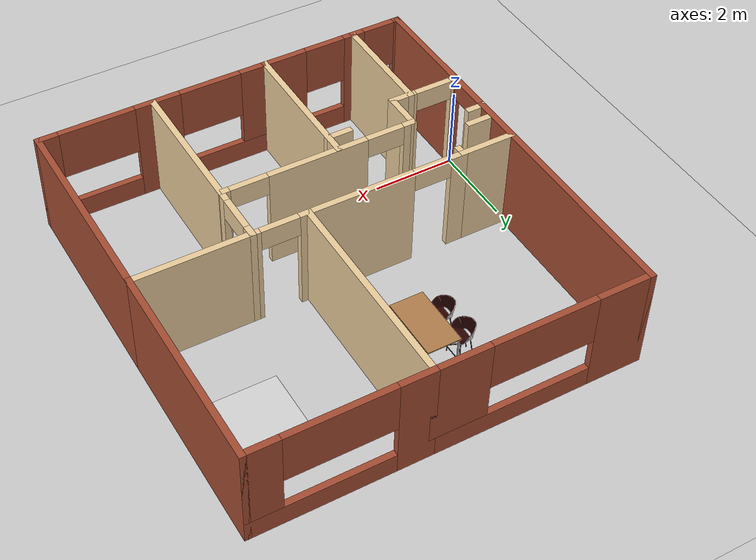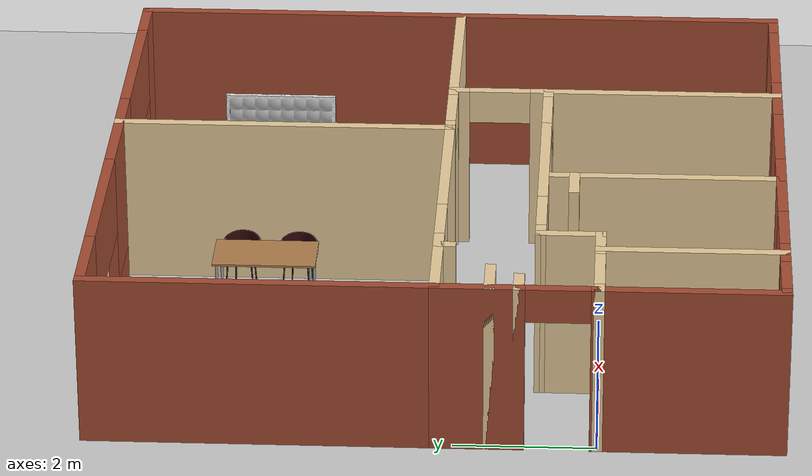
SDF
<sdf version="1.6">
 <world name="default">
  <light name="sun" type="directional">
   <pose>0 0 10 0 -0 0</pose>
   <diffuse>0.8 0.8 0.8 1</diffuse>
   <specular>0.2 0.2 0.2 1</specular>
   <attenuation>
    <range>1000</range>
    <constant>0.9</constant>
    <linear>0.01</linear>
    <quadratic>0.001</quadratic>
   </attenuation>
   <direction>-0.5 0.1 -0.9</direction>
  </light>
  <model name="ground_plane">
   <static>1</static>
   <link name="link">
    <collision name="collision">
     <geometry><plane><normal>0 0 1</normal><size>100 100</size></plane></geometry>
     <surface>
      <contact><collide_bitmask>65535</collide_bitmask></contact>
      <friction><ode><mu>100</mu><mu2>50</mu2></ode></friction>
     </surface>
    </collision>
    <visual name="visual">
     <cast_shadows>0</cast_shadows>
     <geometry><plane><normal>0 0 1</normal><size>100 100</size></plane></geometry>
     <material>
      <script><uri>file://media/materials/scripts/gazebo.material</uri><name>Gazebo/Grey</name></script>
     </material>
    </visual>
   </link>
  </model>
  <gravity>0 0 -9.8</gravity>
  <magnetic_field>6e-06 2.3e-05 -4.2e-05</magnetic_field>
  <atmosphere type="adiabatic"/>
  <physics name="default_physics" default="0" type="ode">
   <max_step_size>0.001</max_step_size>
   <real_time_factor>1</real_time_factor>
   <real_time_update_rate>1000</real_time_update_rate>
  </physics>
  <scene><ambient>0.4 0.4 0.4 1</ambient><background>0.7 0.7 0.7 1</background><shadows>1</shadows></scene>
  <audio><device>default</device></audio>
  <spherical_coordinates>
   <surface_model>EARTH_WGS84</surface_model>
   <latitude_deg>0</latitude_deg>
   <longitude_deg>0</longitude_deg>
   <elevation>0</elevation>
   <heading_deg>0</heading_deg>
  </spherical_coordinates>
  <model name="table">
   <static>1</static>
   <link name="link">
    <collision name="surface">
     <pose>0 0 1 0 -0 0</pose>
     <geometry><box><size>1.5 0.8 0.03</size></box></geometry>
     <surface><friction><ode><mu>0.6</mu><mu2>0.6</mu2></ode></friction></surface>
    </collision>
    <visual name="visual1">
     <pose>0 0 1 0 -0 0</pose>
     <geometry><box><size>1.5 0.8 0.03</size></box></geometry>
     <material>
      <script><uri>file://media/materials/scripts/gazebo.material</uri><name>Gazebo/Wood</name></script>
     </material>
    </visual>
    <collision name="front_left_leg">
     <pose>0.68 0.38 0.5 0 -0 0</pose>
     <geometry><cylinder><radius>0.02</radius><length>1</length></cylinder></geometry>
    </collision>
    <visual name="front_left_leg">
     <pose>0.68 0.38 0.5 0 -0 0</pose>
     <geometry><cylinder><radius>0.02</radius><length>1</length></cylinder></geometry>
     <material>
      <script><uri>file://media/materials/scripts/gazebo.material</uri><name>Gazebo/Grey</name></script>
     </material>
    </visual>
    <collision name="front_right_leg">
     <pose>0.68 -0.38 0.5 0 -0 0</pose>
     <geometry><cylinder><radius>0.02</radius><length>1</length></cylinder></geometry>
    </collision>
    <visual name="front_right_leg">
     <pose>0.68 -0.38 0.5 0 -0 0</pose>
     <geometry><cylinder><radius>0.02</radius><length>1</length></cylinder></geometry>
     <material>
      <script><uri>file://media/materials/scripts/gazebo.material</uri><name>Gazebo/Grey</name></script>
     </material>
    </visual>
    <collision name="back_right_leg">
     <pose>-0.68 -0.38 0.5 0 -0 0</pose>
     <geometry><cylinder><radius>0.02</radius><length>1</length></cylinder></geometry>
    </collision>
    <visual name="back_right_leg">
     <pose>-0.68 -0.38 0.5 0 -0 0</pose>
     <geometry><cylinder><radius>0.02</radius><length>1</length></cylinder></geometry>
     <material>
      <script><uri>file://media/materials/scripts/gazebo.material</uri><name>Gazebo/Grey</name></script>
     </material>
    </visual>
    <collision name="back_left_leg">
     <pose>-0.68 0.38 0.5 0 -0 0</pose>
     <geometry><cylinder><radius>0.02</radius><length>1</length></cylinder></geometry>
    </collision>
    <visual name="back_left_leg">
     <pose>-0.68 0.38 0.5 0 -0 0</pose>
     <geometry><cylinder><radius>0.02</radius><length>1</length></cylinder></geometry>
     <material>
      <script><uri>file://media/materials/scripts/gazebo.material</uri><name>Gazebo/Grey</name></script>
     </material>
    </visual>
   </link>
   <pose>3.75651 4.88007 0 0 -0 1.57</pose>
  </model>
  <model name="chair_1">
   <pose>3.42122 4.54338 0 0 0 -1.57568</pose>
   <static>1</static>
   <link name="body">
    <visual name="visual">
     <geometry><mesh><uri>file:///home/robond/catkin_ws/src/my_robot_v2/meshes/chair.dae</uri></mesh></geometry>
    </visual>
   </link>
  </model>
  <model name="chair_2">
   <pose>4.09913 4.43293 0 0 -0 1.56866</pose>
   <static>1</static>
   <link name="body">
    <visual name="visual">
     <geometry><mesh><uri>file:///home/robond/catkin_ws/src/my_robot_v2/meshes/chair.dae</uri></mesh></geometry>
    </visual>
   </link>
  </model>
  <model name="chair_3">
   <pose>3.38027 5.25761 0 0 0 -1.56972</pose>
   <static>1</static>
   <link name="body">
    <visual name="visual">
     <geometry><mesh><uri>file:///home/robond/catkin_ws/src/my_robot_v2/meshes/chair.dae</uri></mesh></geometry>
    </visual>
   </link>
  </model>
  <model name="chair_4">
   <pose>4.12679 5.2738 0 0 -0 1.56017</pose>
   <static>1</static>
   <link name="body">
    <visual name="visual">
     <geometry><mesh><uri>file:///home/robond/catkin_ws/src/my_robot_v2/meshes/chair.dae</uri></mesh></geometry>
    </visual>
   </link>
  </model>
  <model name="myhome">
   <pose>4.5 2.27499 0 0 -0 0</pose>
   <link name="Wall_0">
    <pose>-4.5 -1.14999 0 0 -0 1.5708</pose>
    <visual name="Wall_0_Visual_0">
     <pose>-1.10813 0 1.25 0 -0 0</pose>
     <geometry><box><size>0.183738 0.15 2.5</size></box></geometry>
     <material>
      <script><uri>file://media/materials/scripts/gazebo.material</uri><name>Gazebo/Bricks</name></script>
      <ambient>1 1 1 1</ambient>
     </material>
     <meta><layer>0</layer></meta>
    </visual>
    <collision name="Wall_0_Collision_0">
     <geometry><box><size>0.183738 0.15 2.5</size></box></geometry>
     <pose>-1.10813 0 1.25 0 -0 0</pose>
    </collision>
    <visual name="Wall_0_Visual_1">
     <pose>0.541869 0 1.25 0 -0 0</pose>
     <geometry><box><size>1.31626 0.15 2.5</size></box></geometry>
     <material>
      <script><uri>file://media/materials/scripts/gazebo.material</uri><name>Gazebo/Bricks</name></script>
      <ambient>1 1 1 1</ambient>
     </material>
     <meta><layer>0</layer></meta>
    </visual>
    <collision name="Wall_0_Collision_1">
     <geometry><box><size>1.31626 0.15 2.5</size></box></geometry>
     <pose>0.541869 0 1.25 0 -0 0</pose>
    </collision>
    <visual name="Wall_0_Visual_2">
     <pose>-0.566262 0 2.25 0 -0 0</pose>
     <geometry><box><size>0.9 0.15 0.5</size></box></geometry>
     <material>
      <script><uri>file://media/materials/scripts/gazebo.material</uri><name>Gazebo/Bricks</name></script>
      <ambient>1 1 1 1</ambient>
     </material>
     <meta><layer>0</layer></meta>
    </visual>
    <collision name="Wall_0_Collision_2">
     <geometry><box><size>0.9 0.15 0.5</size></box></geometry>
     <pose>-0.566262 0 2.25 0 -0 0</pose>
    </collision>
   </link>
   <link name="Wall_11">
    <collision name="Wall_11_Collision">
     <geometry><box><size>0.32 0.15 2.5</size></box></geometry>
     <pose>0 0 1.25 0 -0 0</pose>
    </collision>
    <visual name="Wall_11_Visual">
     <pose>0 0 1.25 0 -0 0</pose>
     <geometry><box><size>0.32 0.15 2.5</size></box></geometry>
     <material>
      <script><uri>file://media/materials/scripts/gazebo.material</uri><name>Gazebo/Grey</name></script>
      <ambient>0.921569 0.807843 0.615686 1</ambient>
     </material>
     <meta><layer>0</layer></meta>
    </visual>
    <pose>-3.25 -0.109994 0 0 0 -1.5708</pose>
   </link>
   <link name="Wall_13">
    <collision name="Wall_13_Collision">
     <geometry><box><size>5 0.15 2.5</size></box></geometry>
     <pose>0 0 1.25 0 -0 0</pose>
    </collision>
    <visual name="Wall_13_Visual">
     <pose>0 0 1.25 0 -0 0</pose>
     <geometry><box><size>5 0.15 2.5</size></box></geometry>
     <material>
      <script><uri>file://media/materials/scripts/gazebo.material</uri><name>Gazebo/Bricks</name></script>
      <ambient>0.996078 0.47451 0.0196078 1</ambient>
     </material>
     <meta><layer>0</layer></meta>
    </visual>
    <pose>-4.5 2.40001 0 0 -0 1.5708</pose>
   </link>
   <link name="Wall_15">
    <pose>-2 4.82501 0 0 -0 0</pose>
    <visual name="Wall_15_Visual_0">
     <pose>-1.89995 0 1.25 0 -0 0</pose>
     <geometry><box><size>1.35011 0.15 2.5</size></box></geometry>
     <material>
      <script><uri>file://media/materials/scripts/gazebo.material</uri><name>Gazebo/Bricks</name></script>
      <ambient>0.996078 0.47451 0.0196078 1</ambient>
     </material>
     <meta><layer>0</layer></meta>
    </visual>
    <collision name="Wall_15_Collision_0">
     <geometry><box><size>1.35011 0.15 2.5</size></box></geometry>
     <pose>-1.89995 0 1.25 0 -0 0</pose>
    </collision>
    <visual name="Wall_15_Visual_1">
     <pose>0.675053 0 0.25 0 -0 0</pose>
     <geometry><box><size>3.79989 0.15 0.5</size></box></geometry>
     <material>
      <script><uri>file://media/materials/scripts/gazebo.material</uri><name>Gazebo/Bricks</name></script>
      <ambient>0.996078 0.47451 0.0196078 1</ambient>
     </material>
     <meta><layer>0</layer></meta>
    </visual>
    <collision name="Wall_15_Collision_1">
     <geometry><box><size>3.79989 0.15 0.5</size></box></geometry>
     <pose>0.675053 0 0.25 0 -0 0</pose>
    </collision>
    <visual name="Wall_15_Visual_2">
     <pose>1.90005 0 1.5 0 -0 0</pose>
     <geometry><box><size>1.34989 0.15 2</size></box></geometry>
     <material>
      <script><uri>file://media/materials/scripts/gazebo.material</uri><name>Gazebo/Bricks</name></script>
      <ambient>0.996078 0.47451 0.0196078 1</ambient>
     </material>
     <meta><layer>0</layer></meta>
    </visual>
    <collision name="Wall_15_Collision_2">
     <geometry><box><size>1.34989 0.15 2</size></box></geometry>
     <pose>1.90005 0 1.5 0 -0 0</pose>
    </collision>
    <visual name="Wall_15_Visual_3">
     <pose>0.000106 0 1.9 0 -0 0</pose>
     <geometry><box><size>2.45 0.15 1.2</size></box></geometry>
     <material>
      <script><uri>file://media/materials/scripts/gazebo.material</uri><name>Gazebo/Bricks</name></script>
      <ambient>0.996078 0.47451 0.0196078 1</ambient>
     </material>
     <meta><layer>0</layer></meta>
    </visual>
    <collision name="Wall_15_Collision_3">
     <geometry><box><size>2.45 0.15 1.2</size></box></geometry>
     <pose>0.000106 0 1.9 0 -0 0</pose>
    </collision>
   </link>
   <link name="Wall_17">
    <collision name="Wall_17_Collision">
     <geometry><box><size>5 0.15 2.5</size></box></geometry>
     <pose>0 0 1.25 0 -0 0</pose>
    </collision>
    <visual name="Wall_17_Visual">
     <pose>0 0 1.25 0 -0 0</pose>
     <geometry><box><size>5 0.15 2.5</size></box></geometry>
     <material>
      <script><uri>file://media/materials/scripts/gazebo.material</uri><name>Gazebo/Grey</name></script>
      <ambient>0.921569 0.807843 0.615686 1</ambient>
     </material>
     <meta><layer>0</layer></meta>
    </visual>
    <pose>0.5 2.40001 0 0 0 -1.5708</pose>
   </link>
   <link name="Wall_19">
    <pose>-1.375 -0.024994 0 0 -0 3.14159</pose>
    <visual name="Wall_19_Visual_0">
     <pose>-0.652573 0 1.25 0 -0 0</pose>
     <geometry><box><size>2.59485 0.15 2.5</size></box></geometry>
     <material>
      <script><uri>file://media/materials/scripts/gazebo.material</uri><name>Gazebo/Grey</name></script>
      <ambient>0.921569 0.807843 0.615686 1</ambient>
     </material>
     <meta><layer>0</layer></meta>
    </visual>
    <collision name="Wall_19_Collision_0">
     <geometry><box><size>2.59485 0.15 2.5</size></box></geometry>
     <pose>-0.652573 0 1.25 0 -0 0</pose>
    </collision>
    <visual name="Wall_19_Visual_1">
     <pose>1.74743 0 1.25 0 -0 0</pose>
     <geometry><box><size>0.405147 0.15 2.5</size></box></geometry>
     <material>
      <script><uri>file://media/materials/scripts/gazebo.material</uri><name>Gazebo/Grey</name></script>
      <ambient>0.921569 0.807843 0.615686 1</ambient>
     </material>
     <meta><layer>0</layer></meta>
    </visual>
    <collision name="Wall_19_Collision_1">
     <geometry><box><size>0.405147 0.15 2.5</size></box></geometry>
     <pose>1.74743 0 1.25 0 -0 0</pose>
    </collision>
    <visual name="Wall_19_Visual_2">
     <pose>1.09485 0 2.25 0 -0 0</pose>
     <geometry><box><size>0.9 0.15 0.5</size></box></geometry>
     <material>
      <script><uri>file://media/materials/scripts/gazebo.material</uri><name>Gazebo/Grey</name></script>
      <ambient>0.921569 0.807843 0.615686 1</ambient>
     </material>
     <meta><layer>0</layer></meta>
    </visual>
    <collision name="Wall_19_Collision_2">
     <geometry><box><size>0.9 0.15 0.5</size></box></geometry>
     <pose>1.09485 0 2.25 0 -0 0</pose>
    </collision>
   </link>
   <link name="Wall_2">
    <collision name="Wall_2_Collision">
     <geometry><box><size>0.49 0.15 2.5</size></box></geometry>
     <pose>0 0 1.25 0 -0 0</pose>
    </collision>
    <visual name="Wall_2_Visual">
     <pose>0 0 1.25 0 -0 0</pose>
     <geometry><box><size>0.49 0.15 2.5</size></box></geometry>
     <material>
      <script><uri>file://media/materials/scripts/gazebo.material</uri><name>Gazebo/Grey</name></script>
      <ambient>0.921569 0.807843 0.615686 1</ambient>
     </material>
     <meta><layer>0</layer></meta>
    </visual>
    <pose>-4.33 -1.17499 0 0 -0 0</pose>
   </link>
   <link name="Wall_21">
    <pose>-3.675 -2.27499 0 0 -0 0</pose>
    <visual name="Wall_21_Visual_0">
     <pose>-0.785796 0 1.25 0 -0 0</pose>
     <geometry><box><size>0.228408 0.15 2.5</size></box></geometry>
     <material>
      <script><uri>file://media/materials/scripts/gazebo.material</uri><name>Gazebo/Grey</name></script>
      <ambient>0.921569 0.807843 0.615686 1</ambient>
     </material>
     <meta><layer>0</layer></meta>
    </visual>
    <collision name="Wall_21_Collision_0">
     <geometry><box><size>0.228408 0.15 2.5</size></box></geometry>
     <pose>-0.785796 0 1.25 0 -0 0</pose>
    </collision>
    <visual name="Wall_21_Visual_1">
     <pose>0.564204 0 1.25 0 -0 0</pose>
     <geometry><box><size>0.671592 0.15 2.5</size></box></geometry>
     <material>
      <script><uri>file://media/materials/scripts/gazebo.material</uri><name>Gazebo/Grey</name></script>
      <ambient>0.921569 0.807843 0.615686 1</ambient>
     </material>
     <meta><layer>0</layer></meta>
    </visual>
    <collision name="Wall_21_Collision_1">
     <geometry><box><size>0.671592 0.15 2.5</size></box></geometry>
     <pose>0.564204 0 1.25 0 -0 0</pose>
    </collision>
    <visual name="Wall_21_Visual_2">
     <pose>-0.221592 0 2.25 0 -0 0</pose>
     <geometry><box><size>0.9 0.15 0.5</size></box></geometry>
     <material>
      <script><uri>file://media/materials/scripts/gazebo.material</uri><name>Gazebo/Grey</name></script>
      <ambient>0.921569 0.807843 0.615686 1</ambient>
     </material>
     <meta><layer>0</layer></meta>
    </visual>
    <collision name="Wall_21_Collision_2">
     <geometry><box><size>0.9 0.15 0.5</size></box></geometry>
     <pose>-0.221592 0 2.25 0 -0 0</pose>
    </collision>
   </link>
   <link name="Wall_23">
    <collision name="Wall_23_Collision">
     <geometry><box><size>0.99 0.15 2.5</size></box></geometry>
     <pose>0 0 1.25 0 -0 0</pose>
    </collision>
    <visual name="Wall_23_Visual">
     <pose>0 0 1.25 0 -0 0</pose>
     <geometry><box><size>0.99 0.15 2.5</size></box></geometry>
     <material>
      <script><uri>file://media/materials/scripts/gazebo.material</uri><name>Gazebo/Grey</name></script>
      <ambient>0.921569 0.807843 0.615686 1</ambient>
     </material>
     <meta><layer>0</layer></meta>
    </visual>
    <pose>-2.85 -1.85499 0 0 -0 1.5708</pose>
   </link>
   <link name="Wall_31">
    <pose>-0.525 -1.43549 0 0 0 -0.000215</pose>
    <visual name="Wall_31_Visual_0">
     <pose>-2.23745 0 1.25 0 -0 0</pose>
     <geometry><box><size>0.3251 0.15 2.5</size></box></geometry>
     <material>
      <script><uri>file://media/materials/scripts/gazebo.material</uri><name>Gazebo/Grey</name></script>
      <ambient>0.921569 0.807843 0.615686 1</ambient>
     </material>
     <meta><layer>0</layer></meta>
    </visual>
    <collision name="Wall_31_Collision_0">
     <geometry><box><size>0.3251 0.15 2.5</size></box></geometry>
     <pose>-2.23745 0 1.25 0 -0 0</pose>
    </collision>
    <visual name="Wall_31_Visual_1">
     <pose>0.030061 0 1.25 0 -0 0</pose>
     <geometry><box><size>2.40992 0.15 2.5</size></box></geometry>
     <material>
      <script><uri>file://media/materials/scripts/gazebo.material</uri><name>Gazebo/Grey</name></script>
      <ambient>0.921569 0.807843 0.615686 1</ambient>
     </material>
     <meta><layer>0</layer></meta>
    </visual>
    <collision name="Wall_31_Collision_1">
     <geometry><box><size>2.40992 0.15 2.5</size></box></geometry>
     <pose>0.030061 0 1.25 0 -0 0</pose>
    </collision>
    <visual name="Wall_31_Visual_2">
     <pose>2.26751 0 1.25 0 -0 0</pose>
     <geometry><box><size>0.264977 0.15 2.5</size></box></geometry>
     <material>
      <script><uri>file://media/materials/scripts/gazebo.material</uri><name>Gazebo/Grey</name></script>
      <ambient>0.921569 0.807843 0.615686 1</ambient>
     </material>
     <meta><layer>0</layer></meta>
    </visual>
    <collision name="Wall_31_Collision_2">
     <geometry><box><size>0.264977 0.15 2.5</size></box></geometry>
     <pose>2.26751 0 1.25 0 -0 0</pose>
    </collision>
    <visual name="Wall_31_Visual_3">
     <pose>-1.6249 0 2.25 0 -0 0</pose>
     <geometry><box><size>0.9 0.15 0.5</size></box></geometry>
     <material>
      <script><uri>file://media/materials/scripts/gazebo.material</uri><name>Gazebo/Grey</name></script>
      <ambient>0.921569 0.807843 0.615686 1</ambient>
     </material>
     <meta><layer>0</layer></meta>
    </visual>
    <collision name="Wall_31_Collision_3">
     <geometry><box><size>0.9 0.15 0.5</size></box></geometry>
     <pose>-1.6249 0 2.25 0 -0 0</pose>
    </collision>
    <visual name="Wall_31_Visual_4">
     <pose>1.68502 0 2.25 0 -0 0</pose>
     <geometry><box><size>0.9 0.15 0.5</size></box></geometry>
     <material>
      <script><uri>file://media/materials/scripts/gazebo.material</uri><name>Gazebo/Grey</name></script>
      <ambient>0.921569 0.807843 0.615686 1</ambient>
     </material>
     <meta><layer>0</layer></meta>
    </visual>
    <collision name="Wall_31_Collision_4">
     <geometry><box><size>0.9 0.15 0.5</size></box></geometry>
     <pose>1.68502 0 2.25 0 -0 0</pose>
    </collision>
   </link>
   <link name="Wall_33">
    <pose>1.8 -0.730494 0 0 -0 1.5708</pose>
    <visual name="Wall_33_Visual_0">
     <pose>-0.606742 0 1.25 0 -0 0</pose>
     <geometry><box><size>0.348515 0.15 2.5</size></box></geometry>
     <material>
      <script><uri>file://media/materials/scripts/gazebo.material</uri><name>Gazebo/Grey</name></script>
      <ambient>0.921569 0.807843 0.615686 1</ambient>
     </material>
     <meta><layer>0</layer></meta>
    </visual>
    <collision name="Wall_33_Collision_0">
     <geometry><box><size>0.348515 0.15 2.5</size></box></geometry>
     <pose>-0.606742 0 1.25 0 -0 0</pose>
    </collision>
    <visual name="Wall_33_Visual_1">
     <pose>0.624258 0 1.25 0 -0 0</pose>
     <geometry><box><size>0.313484 0.15 2.5</size></box></geometry>
     <material>
      <script><uri>file://media/materials/scripts/gazebo.material</uri><name>Gazebo/Grey</name></script>
      <ambient>0.921569 0.807843 0.615686 1</ambient>
     </material>
     <meta><layer>0</layer></meta>
    </visual>
    <collision name="Wall_33_Collision_1">
     <geometry><box><size>0.313484 0.15 2.5</size></box></geometry>
     <pose>0.624258 0 1.25 0 -0 0</pose>
    </collision>
    <visual name="Wall_33_Visual_2">
     <pose>0.017516 0 2.25 0 -0 0</pose>
     <geometry><box><size>0.9 0.15 0.5</size></box></geometry>
     <material>
      <script><uri>file://media/materials/scripts/gazebo.material</uri><name>Gazebo/Grey</name></script>
      <ambient>0.921569 0.807843 0.615686 1</ambient>
     </material>
     <meta><layer>0</layer></meta>
    </visual>
    <collision name="Wall_33_Collision_2">
     <geometry><box><size>0.9 0.15 0.5</size></box></geometry>
     <pose>0.017516 0 2.25 0 -0 0</pose>
    </collision>
   </link>
   <link name="Wall_35">
    <pose>1.15 -0.024994 0 0 -0 0</pose>
    <visual name="Wall_35_Visual_0">
     <pose>-0.575785 0 1.25 0 -0 0</pose>
     <geometry><box><size>0.298431 0.15 2.5</size></box></geometry>
     <material>
      <script><uri>file://media/materials/scripts/gazebo.material</uri><name>Gazebo/Grey</name></script>
      <ambient>0.921569 0.807843 0.615686 1</ambient>
     </material>
     <meta><layer>0</layer></meta>
    </visual>
    <collision name="Wall_35_Collision_0">
     <geometry><box><size>0.298431 0.15 2.5</size></box></geometry>
     <pose>-0.575785 0 1.25 0 -0 0</pose>
    </collision>
    <visual name="Wall_35_Visual_1">
     <pose>0.599215 0 1.25 0 -0 0</pose>
     <geometry><box><size>0.251569 0.15 2.5</size></box></geometry>
     <material>
      <script><uri>file://media/materials/scripts/gazebo.material</uri><name>Gazebo/Grey</name></script>
      <ambient>0.921569 0.807843 0.615686 1</ambient>
     </material>
     <meta><layer>0</layer></meta>
    </visual>
    <collision name="Wall_35_Collision_1">
     <geometry><box><size>0.251569 0.15 2.5</size></box></geometry>
     <pose>0.599215 0 1.25 0 -0 0</pose>
    </collision>
    <visual name="Wall_35_Visual_2">
     <pose>0.023431 0 2.25 0 -0 0</pose>
     <geometry><box><size>0.9 0.15 0.5</size></box></geometry>
     <material>
      <script><uri>file://media/materials/scripts/gazebo.material</uri><name>Gazebo/Grey</name></script>
      <ambient>0.921569 0.807843 0.615686 1</ambient>
     </material>
     <meta><layer>0</layer></meta>
    </visual>
    <collision name="Wall_35_Collision_2">
     <geometry><box><size>0.9 0.15 0.5</size></box></geometry>
     <pose>0.023431 0 2.25 0 -0 0</pose>
    </collision>
   </link>
   <link name="Wall_37">
    <collision name="Wall_37_Collision">
     <geometry><box><size>2.7 0.15 2.5</size></box></geometry>
     <pose>0 0 1.25 0 -0 0</pose>
    </collision>
    <visual name="Wall_37_Visual">
     <pose>0 0 1.25 0 -0 0</pose>
     <geometry><box><size>2.7 0.15 2.5</size></box></geometry>
     <material>
      <script><uri>file://media/materials/scripts/gazebo.material</uri><name>Gazebo/Bricks</name></script>
      <ambient>1 1 1 1</ambient>
     </material>
     <meta><layer>0</layer></meta>
    </visual>
    <pose>-4.5 -3.54999 0 0 0 -1.5708</pose>
   </link>
   <link name="Wall_39">
    <pose>-3.9 -4.82499 0 0 -0 0</pose>
    <visual name="Wall_39_Visual_0">
     <pose>-0.571745 0 1.25 0 -0 0</pose>
     <geometry><box><size>0.206511 0.15 2.5</size></box></geometry>
     <material>
      <script><uri>file://media/materials/scripts/gazebo.material</uri><name>Gazebo/Bricks</name></script>
      <ambient>1 1 1 1</ambient>
     </material>
     <meta><layer>0</layer></meta>
    </visual>
    <collision name="Wall_39_Collision_0">
     <geometry><box><size>0.206511 0.15 2.5</size></box></geometry>
     <pose>-0.571745 0 1.25 0 -0 0</pose>
    </collision>
    <visual name="Wall_39_Visual_1">
     <pose>0.103255 0 0.25 0 -0 0</pose>
     <geometry><box><size>1.14349 0.15 0.5</size></box></geometry>
     <material>
      <script><uri>file://media/materials/scripts/gazebo.material</uri><name>Gazebo/Bricks</name></script>
      <ambient>1 1 1 1</ambient>
     </material>
     <meta><layer>0</layer></meta>
    </visual>
    <collision name="Wall_39_Collision_1">
     <geometry><box><size>1.14349 0.15 0.5</size></box></geometry>
     <pose>0.103255 0 0.25 0 -0 0</pose>
    </collision>
    <visual name="Wall_39_Visual_2">
     <pose>0.503255 0 1.5 0 -0 0</pose>
     <geometry><box><size>0.343489 0.15 2</size></box></geometry>
     <material>
      <script><uri>file://media/materials/scripts/gazebo.material</uri><name>Gazebo/Bricks</name></script>
      <ambient>1 1 1 1</ambient>
     </material>
     <meta><layer>0</layer></meta>
    </visual>
    <collision name="Wall_39_Collision_2">
     <geometry><box><size>0.343489 0.15 2</size></box></geometry>
     <pose>0.503255 0 1.5 0 -0 0</pose>
    </collision>
    <visual name="Wall_39_Visual_3">
     <pose>-0.068489 0 1.9 0 -0 0</pose>
     <geometry><box><size>0.8 0.15 1.2</size></box></geometry>
     <material>
      <script><uri>file://media/materials/scripts/gazebo.material</uri><name>Gazebo/Bricks</name></script>
      <ambient>1 1 1 1</ambient>
     </material>
     <meta><layer>0</layer></meta>
    </visual>
    <collision name="Wall_39_Collision_3">
     <geometry><box><size>0.8 0.15 1.2</size></box></geometry>
     <pose>-0.068489 0 1.9 0 -0 0</pose>
    </collision>
   </link>
   <link name="Wall_41">
    <collision name="Wall_41_Collision">
     <geometry><box><size>2.7 0.15 2.5</size></box></geometry>
     <pose>0 0 1.25 0 -0 0</pose>
    </collision>
    <visual name="Wall_41_Visual">
     <pose>0 0 1.25 0 -0 0</pose>
     <geometry><box><size>2.7 0.15 2.5</size></box></geometry>
     <material>
      <script><uri>file://media/materials/scripts/gazebo.material</uri><name>Gazebo/Grey</name></script>
      <ambient>0.921569 0.807843 0.615686 1</ambient>
     </material>
     <meta><layer>0</layer></meta>
    </visual>
    <pose>-3.3 -3.54999 0 0 -0 1.5708</pose>
   </link>
   <link name="Wall_43">
    <pose>-2.15 -4.82499 0 0 -0 0</pose>
    <visual name="Wall_43_Visual_0">
     <pose>-1.05276 0 1.25 0 -0 0</pose>
     <geometry><box><size>0.344481 0.15 2.5</size></box></geometry>
     <material>
      <script><uri>file://media/materials/scripts/gazebo.material</uri><name>Gazebo/Bricks</name></script>
      <ambient>1 1 1 1</ambient>
     </material>
     <meta><layer>0</layer></meta>
    </visual>
    <collision name="Wall_43_Collision_0">
     <geometry><box><size>0.344481 0.15 2.5</size></box></geometry>
     <pose>-1.05276 0 1.25 0 -0 0</pose>
    </collision>
    <visual name="Wall_43_Visual_1">
     <pose>0.17224 0 0.25 0 -0 0</pose>
     <geometry><box><size>2.10552 0.15 0.5</size></box></geometry>
     <material>
      <script><uri>file://media/materials/scripts/gazebo.material</uri><name>Gazebo/Bricks</name></script>
      <ambient>1 1 1 1</ambient>
     </material>
     <meta><layer>0</layer></meta>
    </visual>
    <collision name="Wall_43_Collision_1">
     <geometry><box><size>2.10552 0.15 0.5</size></box></geometry>
     <pose>0.17224 0 0.25 0 -0 0</pose>
    </collision>
    <visual name="Wall_43_Visual_2">
     <pose>0.67224 0 1.5 0 -0 0</pose>
     <geometry><box><size>1.10552 0.15 2</size></box></geometry>
     <material>
      <script><uri>file://media/materials/scripts/gazebo.material</uri><name>Gazebo/Bricks</name></script>
      <ambient>1 1 1 1</ambient>
     </material>
     <meta><layer>0</layer></meta>
    </visual>
    <collision name="Wall_43_Collision_2">
     <geometry><box><size>1.10552 0.15 2</size></box></geometry>
     <pose>0.67224 0 1.5 0 -0 0</pose>
    </collision>
    <visual name="Wall_43_Visual_3">
     <pose>-0.380519 0 1.9 0 -0 0</pose>
     <geometry><box><size>1 0.15 1.2</size></box></geometry>
     <material>
      <script><uri>file://media/materials/scripts/gazebo.material</uri><name>Gazebo/Bricks</name></script>
      <ambient>1 1 1 1</ambient>
     </material>
     <meta><layer>0</layer></meta>
    </visual>
    <collision name="Wall_43_Collision_3">
     <geometry><box><size>1 0.15 1.2</size></box></geometry>
     <pose>-0.380519 0 1.9 0 -0 0</pose>
    </collision>
   </link>
   <link name="Wall_45">
    <collision name="Wall_45_Collision">
     <geometry><box><size>3.527 0.15 2.5</size></box></geometry>
     <pose>0 0 1.25 0 -0 0</pose>
    </collision>
    <visual name="Wall_45_Visual">
     <pose>0 0 1.25 0 -0 0</pose>
     <geometry><box><size>3.527 0.15 2.5</size></box></geometry>
     <material>
      <script><uri>file://media/materials/scripts/gazebo.material</uri><name>Gazebo/Grey</name></script>
      <ambient>0.921569 0.807843 0.615686 1</ambient>
     </material>
     <meta><layer>0</layer></meta>
    </visual>
    <pose>-1 -3.13649 0 0 -0 1.5708</pose>
   </link>
   <link name="Wall_47">
    <collision name="Wall_47_Collision">
     <geometry><box><size>3.53902 0.15 2.5</size></box></geometry>
     <pose>0 0 1.25 0 -0 0</pose>
    </collision>
    <visual name="Wall_47_Visual">
     <pose>0 0 1.25 0 -0 0</pose>
     <geometry><box><size>3.53902 0.15 2.5</size></box></geometry>
     <material>
      <script><uri>file://media/materials/scripts/gazebo.material</uri><name>Gazebo/Grey</name></script>
      <ambient>0.921569 0.807843 0.615686 1</ambient>
     </material>
     <meta><layer>0</layer></meta>
    </visual>
    <pose>1.8 -3.13049 0 0 0 -1.5708</pose>
   </link>
   <link name="Wall_48">
    <pose>0.4 -4.82499 0 0 -0 3.14159</pose>
    <visual name="Wall_48_Visual_0">
     <pose>-1.11423 0 1.25 0 -0 0</pose>
     <geometry><box><size>0.721544 0.15 2.5</size></box></geometry>
     <material>
      <script><uri>file://media/materials/scripts/gazebo.material</uri><name>Gazebo/Bricks</name></script>
      <ambient>1 1 1 1</ambient>
     </material>
     <meta><layer>0</layer></meta>
    </visual>
    <collision name="Wall_48_Collision_0">
     <geometry><box><size>0.721544 0.15 2.5</size></box></geometry>
     <pose>-1.11423 0 1.25 0 -0 0</pose>
    </collision>
    <visual name="Wall_48_Visual_1">
     <pose>0.360772 0 0.25 0 -0 0</pose>
     <geometry><box><size>2.22846 0.15 0.5</size></box></geometry>
     <material>
      <script><uri>file://media/materials/scripts/gazebo.material</uri><name>Gazebo/Bricks</name></script>
      <ambient>1 1 1 1</ambient>
     </material>
     <meta><layer>0</layer></meta>
    </visual>
    <collision name="Wall_48_Collision_1">
     <geometry><box><size>2.22846 0.15 0.5</size></box></geometry>
     <pose>0.360772 0 0.25 0 -0 0</pose>
    </collision>
    <visual name="Wall_48_Visual_2">
     <pose>1.11077 0 1.5 0 -0 0</pose>
     <geometry><box><size>0.728456 0.15 2</size></box></geometry>
     <material>
      <script><uri>file://media/materials/scripts/gazebo.material</uri><name>Gazebo/Bricks</name></script>
      <ambient>1 1 1 1</ambient>
     </material>
     <meta><layer>0</layer></meta>
    </visual>
    <collision name="Wall_48_Collision_2">
     <geometry><box><size>0.728456 0.15 2</size></box></geometry>
     <pose>1.11077 0 1.5 0 -0 0</pose>
    </collision>
    <visual name="Wall_48_Visual_3">
     <pose>-0.003456 0 1.9 0 -0 0</pose>
     <geometry><box><size>1.5 0.15 1.2</size></box></geometry>
     <material>
      <script><uri>file://media/materials/scripts/gazebo.material</uri><name>Gazebo/Bricks</name></script>
      <ambient>1 1 1 1</ambient>
     </material>
     <meta><layer>0</layer></meta>
    </visual>
    <collision name="Wall_48_Collision_3">
     <geometry><box><size>1.5 0.15 1.2</size></box></geometry>
     <pose>-0.003456 0 1.9 0 -0 0</pose>
    </collision>
   </link>
   <link name="Wall_52">
    <pose>3.15 -4.82499 0 0 -0 0</pose>
    <visual name="Wall_52_Visual_0">
     <pose>-1.16201 0 1.25 0 -0 0</pose>
     <geometry><box><size>0.525985 0.15 2.5</size></box></geometry>
     <material>
      <script><uri>file://media/materials/scripts/gazebo.material</uri><name>Gazebo/Bricks</name></script>
      <ambient>1 1 1 1</ambient>
     </material>
     <meta><layer>0</layer></meta>
    </visual>
    <collision name="Wall_52_Collision_0">
     <geometry><box><size>0.525985 0.15 2.5</size></box></geometry>
     <pose>-1.16201 0 1.25 0 -0 0</pose>
    </collision>
    <visual name="Wall_52_Visual_1">
     <pose>0.262992 0 0.25 0 -0 0</pose>
     <geometry><box><size>2.32402 0.15 0.5</size></box></geometry>
     <material>
      <script><uri>file://media/materials/scripts/gazebo.material</uri><name>Gazebo/Bricks</name></script>
      <ambient>1 1 1 1</ambient>
     </material>
     <meta><layer>0</layer></meta>
    </visual>
    <collision name="Wall_52_Collision_1">
     <geometry><box><size>2.32402 0.15 0.5</size></box></geometry>
     <pose>0.262992 0 0.25 0 -0 0</pose>
    </collision>
    <visual name="Wall_52_Visual_2">
     <pose>1.16299 0 1.5 0 -0 0</pose>
     <geometry><box><size>0.524015 0.15 2</size></box></geometry>
     <material>
      <script><uri>file://media/materials/scripts/gazebo.material</uri><name>Gazebo/Bricks</name></script>
      <ambient>1 1 1 1</ambient>
     </material>
     <meta><layer>0</layer></meta>
    </visual>
    <collision name="Wall_52_Collision_2">
     <geometry><box><size>0.524015 0.15 2</size></box></geometry>
     <pose>1.16299 0 1.5 0 -0 0</pose>
    </collision>
    <visual name="Wall_52_Visual_3">
     <pose>0.000985 0 1.9 0 -0 0</pose>
     <geometry><box><size>1.8 0.15 1.2</size></box></geometry>
     <material>
      <script><uri>file://media/materials/scripts/gazebo.material</uri><name>Gazebo/Bricks</name></script>
      <ambient>1 1 1 1</ambient>
     </material>
     <meta><layer>0</layer></meta>
    </visual>
    <collision name="Wall_52_Collision_3">
     <geometry><box><size>1.8 0.15 1.2</size></box></geometry>
     <pose>0.000985 0 1.9 0 -0 0</pose>
    </collision>
   </link>
   <link name="Wall_55">
    <collision name="Wall_55_Collision">
     <geometry><box><size>2.85 0.15 2.5</size></box></geometry>
     <pose>0 0 1.25 0 -0 0</pose>
    </collision>
    <visual name="Wall_55_Visual">
     <pose>0 0 1.25 0 -0 0</pose>
     <geometry><box><size>2.85 0.15 2.5</size></box></geometry>
     <material>
      <script><uri>file://media/materials/scripts/gazebo.material</uri><name>Gazebo/Grey</name></script>
      <ambient>0.921569 0.807843 0.615686 1</ambient>
     </material>
     <meta><layer>0</layer></meta>
    </visual>
    <pose>3.15 -0.024994 0 0 -0 0</pose>
   </link>
   <link name="Wall_57">
    <pose>2.5 4.82501 0 0 -0 0</pose>
    <visual name="Wall_57_Visual_0">
     <pose>-1.65081 0 1.25 0 -0 0</pose>
     <geometry><box><size>0.848373 0.15 2.5</size></box></geometry>
     <material>
      <script><uri>file://media/materials/scripts/gazebo.material</uri><name>Gazebo/Bricks</name></script>
      <ambient>1 1 1 1</ambient>
     </material>
     <meta><layer>0</layer></meta>
    </visual>
    <collision name="Wall_57_Collision_0">
     <geometry><box><size>0.848373 0.15 2.5</size></box></geometry>
     <pose>-1.65081 0 1.25 0 -0 0</pose>
    </collision>
    <visual name="Wall_57_Visual_1">
     <pose>0.424187 0 0.25 0 -0 0</pose>
     <geometry><box><size>3.30163 0.15 0.5</size></box></geometry>
     <material>
      <script><uri>file://media/materials/scripts/gazebo.material</uri><name>Gazebo/Bricks</name></script>
      <ambient>1 1 1 1</ambient>
     </material>
     <meta><layer>0</layer></meta>
    </visual>
    <collision name="Wall_57_Collision_1">
     <geometry><box><size>3.30163 0.15 0.5</size></box></geometry>
     <pose>0.424187 0 0.25 0 -0 0</pose>
    </collision>
    <visual name="Wall_57_Visual_2">
     <pose>1.64919 0 1.5 0 -0 0</pose>
     <geometry><box><size>0.851627 0.15 2</size></box></geometry>
     <material>
      <script><uri>file://media/materials/scripts/gazebo.material</uri><name>Gazebo/Bricks</name></script>
      <ambient>1 1 1 1</ambient>
     </material>
     <meta><layer>0</layer></meta>
    </visual>
    <collision name="Wall_57_Collision_2">
     <geometry><box><size>0.851627 0.15 2</size></box></geometry>
     <pose>1.64919 0 1.5 0 -0 0</pose>
    </collision>
    <visual name="Wall_57_Visual_3">
     <pose>-0.001627 0 1.9 0 -0 0</pose>
     <geometry><box><size>2.45 0.15 1.2</size></box></geometry>
     <material>
      <script><uri>file://media/materials/scripts/gazebo.material</uri><name>Gazebo/Bricks</name></script>
      <ambient>1 1 1 1</ambient>
     </material>
     <meta><layer>0</layer></meta>
    </visual>
    <collision name="Wall_57_Collision_3">
     <geometry><box><size>2.45 0.15 1.2</size></box></geometry>
     <pose>-0.001627 0 1.9 0 -0 0</pose>
    </collision>
   </link>
   <link name="Wall_58">
    <collision name="Wall_58_Collision">
     <geometry><box><size>5 0.15 2.5</size></box></geometry>
     <pose>0 0 1.25 0 -0 0</pose>
    </collision>
    <visual name="Wall_58_Visual">
     <pose>0 0 1.25 0 -0 0</pose>
     <geometry><box><size>5 0.15 2.5</size></box></geometry>
     <material>
      <script><uri>file://media/materials/scripts/gazebo.material</uri><name>Gazebo/Bricks</name></script>
      <ambient>1 1 1 1</ambient>
     </material>
     <meta><layer>0</layer></meta>
    </visual>
    <pose>4.5 2.40001 0 0 0 -1.5708</pose>
   </link>
   <link name="Wall_6">
    <collision name="Wall_6_Collision">
     <geometry><box><size>0.75 0.15 2.5</size></box></geometry>
     <pose>0 0 1.25 0 -0 0</pose>
    </collision>
    <visual name="Wall_6_Visual">
     <pose>0 0 1.25 0 -0 0</pose>
     <geometry><box><size>0.75 0.15 2.5</size></box></geometry>
     <material>
      <script><uri>file://media/materials/scripts/gazebo.material</uri><name>Gazebo/Grey</name></script>
      <ambient>0.921569 0.807843 0.615686 1</ambient>
     </material>
     <meta><layer>0</layer></meta>
    </visual>
    <pose>-4.2 -0.774994 0 0 -0 0</pose>
   </link>
   <link name="Wall_60">
    <collision name="Wall_60_Collision">
     <geometry><box><size>4.95 0.15 2.5</size></box></geometry>
     <pose>0 0 1.25 0 -0 0</pose>
    </collision>
    <visual name="Wall_60_Visual">
     <pose>0 0 1.25 0 -0 0</pose>
     <geometry><box><size>4.95 0.15 2.5</size></box></geometry>
     <material>
      <script><uri>file://media/materials/scripts/gazebo.material</uri><name>Gazebo/Bricks</name></script>
      <ambient>1 1 1 1</ambient>
     </material>
     <meta><layer>0</layer></meta>
    </visual>
    <pose>4.5 -2.42499 0 0 0 -1.5708</pose>
   </link>
   <link name="Wall_62">
    <collision name="Wall_62_Collision">
     <geometry><box><size>0.65 0.15 2.5</size></box></geometry>
     <pose>0 0 1.25 0 -0 0</pose>
    </collision>
    <visual name="Wall_62_Visual">
     <pose>0 0 1.25 0 -0 0</pose>
     <geometry><box><size>0.65 0.15 2.5</size></box></geometry>
     <material>
      <script><uri>file://media/materials/scripts/gazebo.material</uri><name>Gazebo/Grey</name></script>
      <ambient>0.921569 0.807843 0.615686 1</ambient>
     </material>
     <meta><layer>0</layer></meta>
    </visual>
    <pose>-1.25 -1.87499 0 0 -0 3.14159</pose>
   </link>
   <link name="Wall_9">
    <collision name="Wall_9_Collision">
     <geometry><box><size>1.4 0.15 2.5</size></box></geometry>
     <pose>0 0 1.25 0 -0 0</pose>
    </collision>
    <visual name="Wall_9_Visual">
     <pose>0 0 1.25 0 -0 0</pose>
     <geometry><box><size>1.4 0.15 2.5</size></box></geometry>
     <material>
      <script><uri>file://media/materials/scripts/gazebo.material</uri><name>Gazebo/Grey</name></script>
      <ambient>0.921569 0.807843 0.615686 1</ambient>
     </material>
     <meta><layer>0</layer></meta>
    </visual>
    <pose>-3.875 -0.024994 0 0 -0 0</pose>
   </link>
   <static>1</static>
  </model>
  <model name="bed">
   <link name="body">
    <inertial>
     <mass>1</mass>
     <inertia><ixx>1</ixx><ixy>0</ixy><ixz>0</ixz><iyy>1</iyy><iyz>0</iyz><izz>1</izz></inertia>
    </inertial>
    <visual name="visual">
     <geometry><mesh><uri>file:///home/robond/catkin_ws/src/my_robot_v2/meshes/bed.dae</uri></mesh></geometry>
     <material><shader type="vertex"><normal_map>__default__</normal_map></shader></material>
    </visual>
    <collision name="collision_1">
     <pose>2.05 0.85 0.575 0 -0 0</pose>
     <geometry><box><size>0.05 1.7 1.15</size></box></geometry>
     <surface>
      <friction>
       <ode><mu>1</mu><mu2>1</mu2><fdir1>0 0 0</fdir1><slip1>0</slip1><slip2>0</slip2></ode>
       <torsional>
        <coefficient>1</coefficient>
        <patch_radius>0</patch_radius>
        <surface_radius>0</surface_radius>
        <use_patch_radius>1</use_patch_radius>
        <ode><slip>0</slip></ode>
       </torsional>
      </friction>
      <bounce><restitution_coefficient>0</restitution_coefficient><threshold>1e+06</threshold></bounce>
      <contact>
       <collide_without_contact>0</collide_without_contact>
       <collide_without_contact_bitmask>1</collide_without_contact_bitmask>
       <collide_bitmask>1</collide_bitmask>
       <ode>
        <soft_cfm>0</soft_cfm>
        <soft_erp>0.2</soft_erp>
        <kp>1e+13</kp>
        <kd>1</kd>
        <max_vel>0.01</max_vel>
        <min_depth>0</min_depth>
       </ode>
       <bullet>
        <split_impulse>1</split_impulse>
        <split_impulse_penetration_threshold>-0.01</split_impulse_penetration_threshold>
        <soft_cfm>0</soft_cfm>
        <soft_erp>0.2</soft_erp>
        <kp>1e+13</kp>
        <kd>1</kd>
       </bullet>
      </contact>
     </surface>
    </collision>
    <collision name="collision_0">
     <pose>1 0.85 0.25 0 -0 0</pose>
     <geometry><box><size>2.05 1.65 0.5</size></box></geometry>
     <surface>
      <friction>
       <ode><mu>1</mu><mu2>1</mu2><fdir1>0 0 0</fdir1><slip1>0</slip1><slip2>0</slip2></ode>
       <torsional>
        <coefficient>1</coefficient>
        <patch_radius>0</patch_radius>
        <surface_radius>0</surface_radius>
        <use_patch_radius>1</use_patch_radius>
        <ode><slip>0</slip></ode>
       </torsional>
      </friction>
      <bounce><restitution_coefficient>0</restitution_coefficient><threshold>1e+06</threshold></bounce>
      <contact>
       <collide_without_contact>0</collide_without_contact>
       <collide_without_contact_bitmask>1</collide_without_contact_bitmask>
       <collide_bitmask>1</collide_bitmask>
       <ode>
        <soft_cfm>0</soft_cfm>
        <soft_erp>0.2</soft_erp>
        <kp>1e+13</kp>
        <kd>1</kd>
        <max_vel>0.01</max_vel>
        <min_depth>0</min_depth>
       </ode>
       <bullet>
        <split_impulse>1</split_impulse>
        <split_impulse_penetration_threshold>-0.01</split_impulse_penetration_threshold>
        <soft_cfm>0</soft_cfm>
        <soft_erp>0.2</soft_erp>
        <kp>1e+13</kp>
        <kd>1</kd>
       </bullet>
      </contact>
     </surface>
    </collision>
   </link>
   <static>1</static>
   <pose>6.83572 4.20183 0 0 -0 0</pose>
  </model>
 </world>
</sdf>
